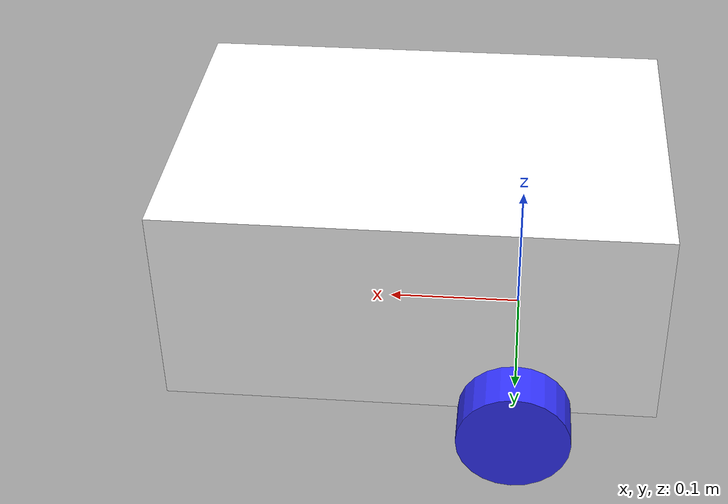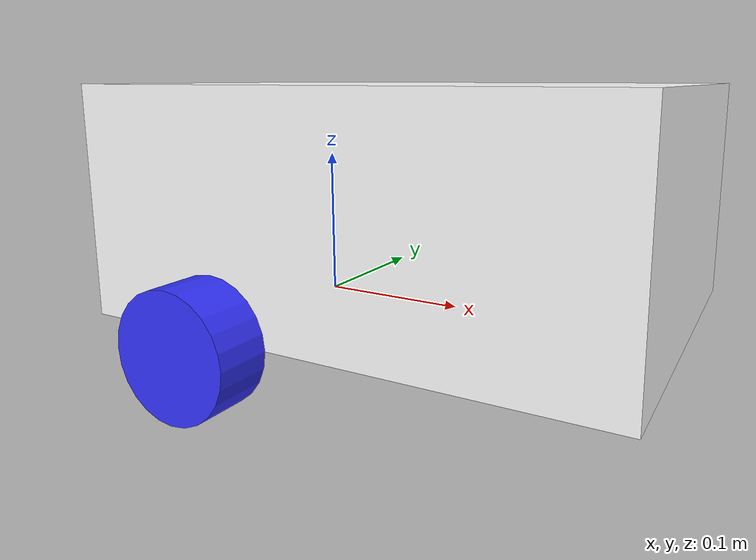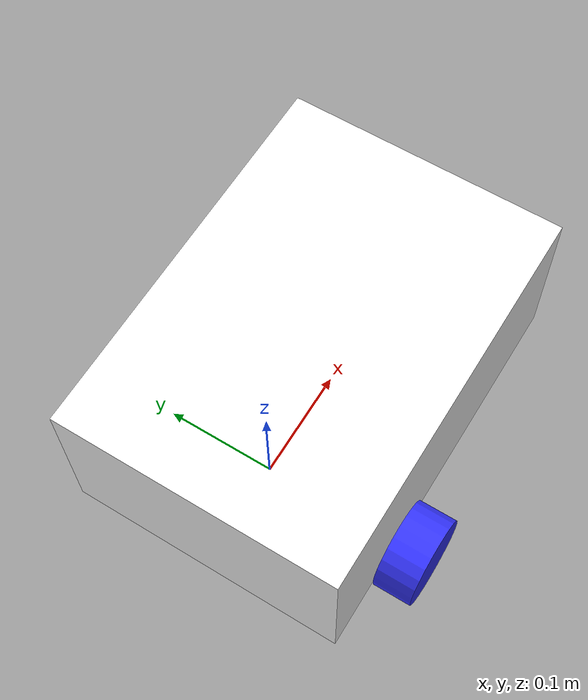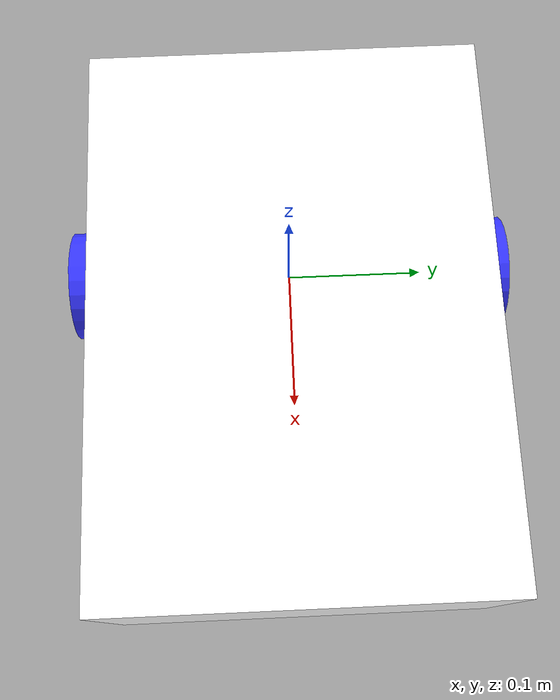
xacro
<?xml version="1.0"?>
<robot xmlns:xacro="http://www.ros.org/wiki/xacro" >

    <xacro:include filename="inertial_macros.xacro"/>

    <material name="white">
        <color rgba="1 1 1 1" />
    </material>

    <material name="orange">
        <color rgba="1 0.3 0.1 1" />
    </material>

    <material name="blue">
        <color rgba="0.2 0.2 1 1" />
    </material>

    <material name="black">
        <color rgba="0 0 0 1" />
    </material>

    <!-- BASE LINK -->

    <link name="base_link">

    </link>

    <!-- BASE_FOOTPRINT LINK -->

    <joint name="base_footprint_joint" type="fixed">
        <parent link="base_link"/>
        <child link="base_footprint"/>
        <origin xyz="0 0 0" rpy="0 0 0"/>
    </joint>

    <link name="base_footprint">
    </link>

    <!-- CHASSIS LINK -->

    <joint name="chassis_joint" type="fixed">
        <parent link="base_link"/>
        <child link="chassis"/>
        <origin xyz="-0.1 0 0"/>
    </joint>

    <link name="chassis">
        <visual>
            <origin xyz="0.175 0 0.075"/>
            <geometry>
                <box size="0.35 0.25 0.15"/>
            </geometry>
            <material name="white"/>
        </visual>

        <collision>
            <origin xyz="0.175 0 0.075"/>
            <geometry>
                <box size="0.35 0.25 0.15"/>
            </geometry>
        </collision>
        <xacro:inertial_box mass="0.5" x="0.35" y="0.25" z="0.15">
            <origin xyz="0.175 0 0.075" rpy="0 0 0"/>
        </xacro:inertial_box>
    </link>

    <gazebo reference="chassis">
        <material>Gazebo/white</material>
    </gazebo>

    <!-- LEFT WHEEL LINK -->

    <joint name="left_wheel_joint" type="continuous">
        <parent link="base_link"/>
        <child link="left_wheel"/>
        <origin xyz="0 0.1425 0" rpy="-${pi/2} 0 0"/>
        <axis xyz="0 0 1"/>
    </joint>

    <link name="left_wheel">
        <visual>
            <geometry>
                <cylinder radius="0.04" length="0.035"/>
            </geometry>
            <material name="blue"/>
        </visual>

        <collision>
            <geometry>
                <cylinder radius="0.04" length="0.035"/>
            </geometry>
        </collision>
        <xacro:inertial_cylinder mass="0.1" length="0.035" radius="0.04">
            <origin xyz="0 0 0" rpy="0 0 0"/>
        </xacro:inertial_cylinder>
    </link>

    <gazebo reference="left_wheel">
        <material>Gazebo/blue</material>
    </gazebo>

 <!-- RIGHT WHEEL LINK -->

    <joint name="right_wheel_joint" type="continuous">
        <parent link="base_link"/>
        <child link="right_wheel"/>
        <origin xyz="0 -0.1425 0" rpy="${pi/2} 0 0"/>
        <axis xyz="0 0 -1"/>
    </joint>

    <link name="right_wheel">
        <visual>
            <geometry>
                <cylinder radius="0.04" length="0.035"/>
            </geometry>
            <material name="blue"/>
        </visual>

        <collision>
            <geometry>
                <cylinder radius="0.04" length="0.035"/>
            </geometry>
        </collision>
        <xacro:inertial_cylinder mass="0.1" length="0.035" radius="0.04">
            <origin xyz="0 0 0" rpy="0 0 0"/>
        </xacro:inertial_cylinder>
    </link>

    <gazebo reference="right_wheel">
        <material>Gazebo/blue</material>
    </gazebo>

 <!--CASTER WHEEL LINK-->

    <joint name="caster_wheel_joint" type="fixed">
        <parent link="chassis"/>
        <child link="caster_wheel"/>
        <origin xyz="0.25 0 0"/>
    </joint>

    <link name="caster_wheel">
        <visual>
            <geometry>
                <sphere radius="0.04"/>
            </geometry>
            <material name="black"/>
        </visual>

        <collision>
            <geometry>
                <sphere radius="0.04"/>
            </geometry>
            <material name="black"/>
        </collision>
        <xacro:inertial_sphere mass="0.1" radius="0.04">
            <origin xyz="0 0 0" rpy="0 0 0"/>
        </xacro:inertial_sphere>
    </link>

    <gazebo reference="caster_wheel">
        <material>Gazebo/black</material>
        <mu1 value="0.001"/>
        <mu2 value="0.001"/>
    </gazebo>

</robot>
